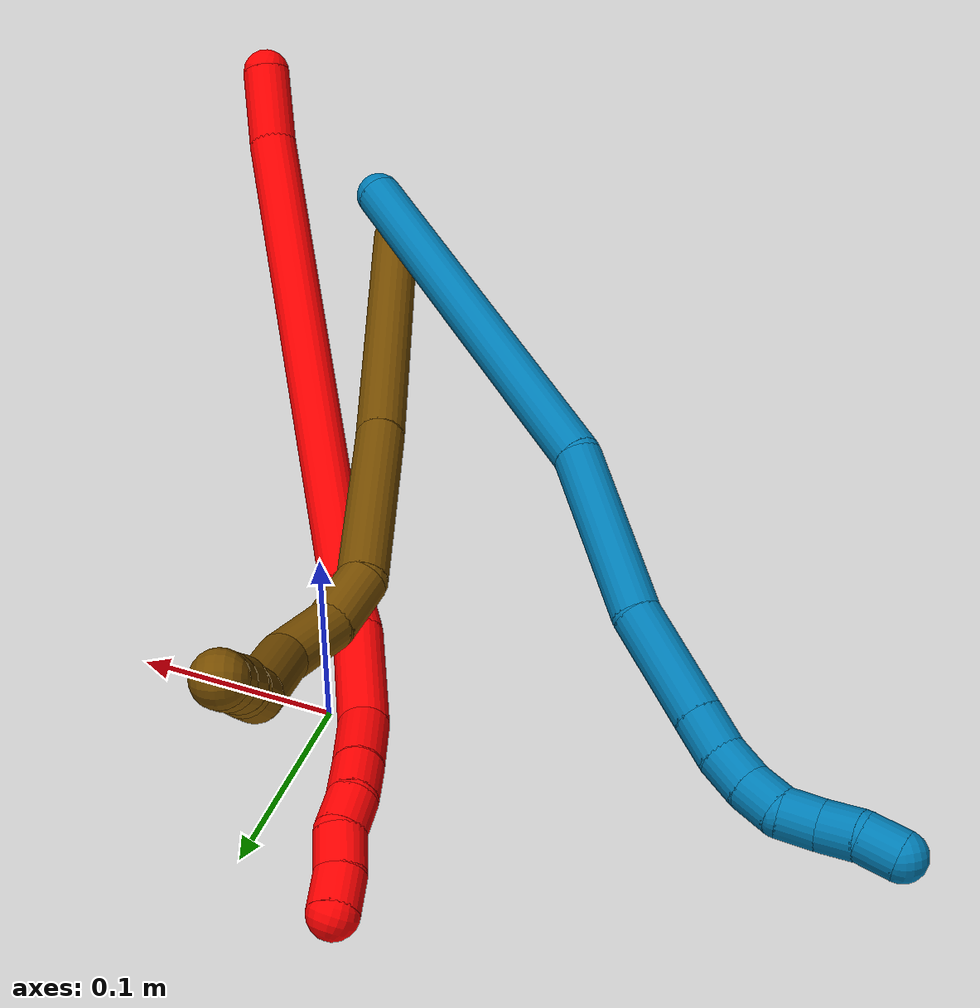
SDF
<sdf version="1.7">
 <world name="default">
  <model name="2">
   <static>0</static>
   <link name="2">
    <collision name="collision-cylinder-e_1_1_4">
     <pose>-0.007089 0.006173 -0.018913 -2.8261 -0.342307 1.65376</pose>
     <geometry><cylinder><radius>0.0125</radius><length>0.04224</length></cylinder></geometry>
     <surface>
      <friction><ode><mu>1.16</mu><mu2>1.16</mu2><slip1>0</slip1><slip2>0</slip2></ode></friction>
      <contact><ode><kp>1e+06</kp><kd>1</kd><max_vel>0</max_vel><min_depth>0.001</min_depth></ode></contact>
     </surface>
    </collision>
    <visual name="visual-cylinder-e_1_1_4">
     <pose>-0.007089 0.006173 -0.018913 -2.8261 -0.342307 1.65376</pose>
     <geometry><cylinder><radius>0.0125</radius><length>0.04224</length></cylinder></geometry>
     <material><ambient>1 0 0 1</ambient></material>
    </visual>
    <collision name="collision-cylinder-e_2_4_5">
     <pose>-0.0576 0.068244 -0.144201 -2.65777 -0.34674 1.23449</pose>
     <geometry><cylinder><radius>0.0125</radius><length>0.255546</length></cylinder></geometry>
     <surface>
      <friction><ode><mu>1.16</mu><mu2>1.16</mu2><slip1>0</slip1><slip2>0</slip2></ode></friction>
      <contact><ode><kp>1e+06</kp><kd>1</kd><max_vel>0</max_vel><min_depth>0.001</min_depth></ode></contact>
     </surface>
    </collision>
    <visual name="visual-cylinder-e_2_4_5">
     <pose>-0.0576 0.068244 -0.144201 -2.65777 -0.34674 1.23449</pose>
     <geometry><cylinder><radius>0.0125</radius><length>0.255546</length></cylinder></geometry>
     <material><ambient>1 0 0 1</ambient></material>
    </visual>
    <collision name="collision-cylinder-e_3_5_6">
     <pose>-0.106614 0.132302 -0.261652 -2.50658 -0.386172 1.07343</pose>
     <geometry><cylinder><radius>0.0125</radius><length>0.029699</length></cylinder></geometry>
     <surface>
      <friction><ode><mu>1.16</mu><mu2>1.16</mu2><slip1>0</slip1><slip2>0</slip2></ode></friction>
      <contact><ode><kp>1e+06</kp><kd>1</kd><max_vel>0</max_vel><min_depth>0.001</min_depth></ode></contact>
     </surface>
    </collision>
    <visual name="visual-cylinder-e_3_5_6">
     <pose>-0.106614 0.132302 -0.261652 -2.50658 -0.386172 1.07343</pose>
     <geometry><cylinder><radius>0.0125</radius><length>0.029699</length></cylinder></geometry>
     <material><ambient>1 0 0 1</ambient></material>
    </visual>
    <collision name="collision-cylinder-e_4_6_7">
     <pose>-0.115739 0.159676 -0.29289 -2.3803 -0.126153 0.313092</pose>
     <geometry><cylinder><radius>0.0125</radius><length>0.056151</length></cylinder></geometry>
     <surface>
      <friction><ode><mu>1.16</mu><mu2>1.16</mu2><slip1>0</slip1><slip2>0</slip2></ode></friction>
      <contact><ode><kp>1e+06</kp><kd>1</kd><max_vel>0</max_vel><min_depth>0.001</min_depth></ode></contact>
     </surface>
    </collision>
    <visual name="visual-cylinder-e_4_6_7">
     <pose>-0.115739 0.159676 -0.29289 -2.3803 -0.126153 0.313092</pose>
     <geometry><cylinder><radius>0.0125</radius><length>0.056151</length></cylinder></geometry>
     <material><ambient>1 0 0 1</ambient></material>
    </visual>
    <collision name="collision-cylinder-e_5_7_8">
     <pose>-0.117388 0.192709 -0.321934 -2.14197 0.114187 -0.208578</pose>
     <geometry><cylinder><radius>0.0125</radius><length>0.033068</length></cylinder></geometry>
     <surface>
      <friction><ode><mu>1.16</mu><mu2>1.16</mu2><slip1>0</slip1><slip2>0</slip2></ode></friction>
      <contact><ode><kp>1e+06</kp><kd>1</kd><max_vel>0</max_vel><min_depth>0.001</min_depth></ode></contact>
     </surface>
    </collision>
    <visual name="visual-cylinder-e_5_7_8">
     <pose>-0.117388 0.192709 -0.321934 -2.14197 0.114187 -0.208578</pose>
     <geometry><cylinder><radius>0.0125</radius><length>0.033068</length></cylinder></geometry>
     <material><ambient>1 0 0 1</ambient></material>
    </visual>
    <collision name="collision-cylinder-e_6_8_9">
     <pose>-0.114096 0.215446 -0.337612 -2.22212 0.124938 -0.251335</pose>
     <geometry><cylinder><radius>0.0125</radius><length>0.022603</length></cylinder></geometry>
     <surface>
      <friction><ode><mu>1.16</mu><mu2>1.16</mu2><slip1>0</slip1><slip2>0</slip2></ode></friction>
      <contact><ode><kp>1e+06</kp><kd>1</kd><max_vel>0</max_vel><min_depth>0.001</min_depth></ode></contact>
     </surface>
    </collision>
    <visual name="visual-cylinder-e_6_8_9">
     <pose>-0.114096 0.215446 -0.337612 -2.22212 0.124938 -0.251335</pose>
     <geometry><cylinder><radius>0.0125</radius><length>0.022603</length></cylinder></geometry>
     <material><ambient>1 0 0 1</ambient></material>
    </visual>
    <collision name="collision-cylinder-e_7_9_10">
     <pose>-0.110558 0.230867 -0.351745 -2.41628 0.213944 -0.551584</pose>
     <geometry><cylinder><radius>0.0125</radius><length>0.020063</length></cylinder></geometry>
     <surface>
      <friction><ode><mu>1.16</mu><mu2>1.16</mu2><slip1>0</slip1><slip2>0</slip2></ode></friction>
      <contact><ode><kp>1e+06</kp><kd>1</kd><max_vel>0</max_vel><min_depth>0.001</min_depth></ode></contact>
     </surface>
    </collision>
    <visual name="visual-cylinder-e_7_9_10">
     <pose>-0.110558 0.230867 -0.351745 -2.41628 0.213944 -0.551584</pose>
     <geometry><cylinder><radius>0.0125</radius><length>0.020063</length></cylinder></geometry>
     <material><ambient>1 0 0 1</ambient></material>
    </visual>
    <collision name="collision-cylinder-e_8_10_11">
     <pose>-0.109797 0.243626 -0.367164 -2.4829 -0.133177 0.385374</pose>
     <geometry><cylinder><radius>0.0125</radius><length>0.020625</length></cylinder></geometry>
     <surface>
      <friction><ode><mu>1.16</mu><mu2>1.16</mu2><slip1>0</slip1><slip2>0</slip2></ode></friction>
      <contact><ode><kp>1e+06</kp><kd>1</kd><max_vel>0</max_vel><min_depth>0.001</min_depth></ode></contact>
     </surface>
    </collision>
    <visual name="visual-cylinder-e_8_10_11">
     <pose>-0.109797 0.243626 -0.367164 -2.4829 -0.133177 0.385374</pose>
     <geometry><cylinder><radius>0.0125</radius><length>0.020625</length></cylinder></geometry>
     <material><ambient>1 0 0 1</ambient></material>
    </visual>
    <collision name="collision-cylinder-e_9_11_2">
     <pose>-0.110738 0.25566 -0.3834 -2.52505 0.042854 -0.134401</pose>
     <geometry><cylinder><radius>0.0125</radius><length>0.020006</length></cylinder></geometry>
     <surface>
      <friction><ode><mu>1.16</mu><mu2>1.16</mu2><slip1>0</slip1><slip2>0</slip2></ode></friction>
      <contact><ode><kp>1e+06</kp><kd>1</kd><max_vel>0</max_vel><min_depth>0.001</min_depth></ode></contact>
     </surface>
    </collision>
    <visual name="visual-cylinder-e_9_11_2">
     <pose>-0.110738 0.25566 -0.3834 -2.52505 0.042854 -0.134401</pose>
     <geometry><cylinder><radius>0.0125</radius><length>0.020006</length></cylinder></geometry>
     <material><ambient>1 0 0 1</ambient></material>
    </visual>
    <collision name="collision-sphere-2">
     <pose>-0.110309 0.261439 -0.391554 0 -0 0</pose>
     <geometry><sphere><radius>0.0125</radius></sphere></geometry>
     <surface>
      <friction><ode><mu>1.16</mu><mu2>1.16</mu2><slip1>0</slip1><slip2>0</slip2></ode></friction>
      <contact><ode><kp>1e+06</kp><kd>1</kd><max_vel>0</max_vel><min_depth>0.001</min_depth></ode></contact>
     </surface>
    </collision>
    <visual name="visual-sphere-2">
     <pose>-0.110309 0.261439 -0.391554 0 -0 0</pose>
     <geometry><sphere><radius>0.0125</radius></sphere></geometry>
     <material><ambient>1 0 0 1</ambient></material>
    </visual>
    <collision name="collision-sphere-11">
     <pose>-0.111167 0.249882 -0.375246 0 -0 0</pose>
     <geometry><sphere><radius>0.0125</radius></sphere></geometry>
     <surface>
      <friction><ode><mu>1.16</mu><mu2>1.16</mu2><slip1>0</slip1><slip2>0</slip2></ode></friction>
      <contact><ode><kp>1e+06</kp><kd>1</kd><max_vel>0</max_vel><min_depth>0.001</min_depth></ode></contact>
     </surface>
    </collision>
    <visual name="visual-sphere-11">
     <pose>-0.111167 0.249882 -0.375246 0 -0 0</pose>
     <geometry><sphere><radius>0.0125</radius></sphere></geometry>
     <material><ambient>1 0 0 1</ambient></material>
    </visual>
    <collision name="collision-sphere-10">
     <pose>-0.108428 0.237369 -0.359081 0 -0 0</pose>
     <geometry><sphere><radius>0.0125</radius></sphere></geometry>
     <surface>
      <friction><ode><mu>1.16</mu><mu2>1.16</mu2><slip1>0</slip1><slip2>0</slip2></ode></friction>
      <contact><ode><kp>1e+06</kp><kd>1</kd><max_vel>0</max_vel><min_depth>0.001</min_depth></ode></contact>
     </surface>
    </collision>
    <visual name="visual-sphere-10">
     <pose>-0.108428 0.237369 -0.359081 0 -0 0</pose>
     <geometry><sphere><radius>0.0125</radius></sphere></geometry>
     <material><ambient>1 0 0 1</ambient></material>
    </visual>
    <collision name="collision-sphere-9">
     <pose>-0.112688 0.224364 -0.34441 0 -0 0</pose>
     <geometry><sphere><radius>0.0125</radius></sphere></geometry>
     <surface>
      <friction><ode><mu>1.16</mu><mu2>1.16</mu2><slip1>0</slip1><slip2>0</slip2></ode></friction>
      <contact><ode><kp>1e+06</kp><kd>1</kd><max_vel>0</max_vel><min_depth>0.001</min_depth></ode></contact>
     </surface>
    </collision>
    <visual name="visual-sphere-9">
     <pose>-0.112688 0.224364 -0.34441 0 -0 0</pose>
     <geometry><sphere><radius>0.0125</radius></sphere></geometry>
     <material><ambient>1 0 0 1</ambient></material>
    </visual>
    <collision name="collision-sphere-4">
     <pose>-0.014178 0.012346 -0.037825 0 -0 0</pose>
     <geometry><sphere><radius>0.0125</radius></sphere></geometry>
     <surface>
      <friction><ode><mu>1.16</mu><mu2>1.16</mu2><slip1>0</slip1><slip2>0</slip2></ode></friction>
      <contact><ode><kp>1e+06</kp><kd>1</kd><max_vel>0</max_vel><min_depth>0.001</min_depth></ode></contact>
     </surface>
    </collision>
    <visual name="visual-sphere-4">
     <pose>-0.014178 0.012346 -0.037825 0 -0 0</pose>
     <geometry><sphere><radius>0.0125</radius></sphere></geometry>
     <material><ambient>1 0 0 1</ambient></material>
    </visual>
    <collision name="collision-sphere-1">
     <geometry><sphere><radius>0.0125</radius></sphere></geometry>
     <surface>
      <friction><ode><mu>1.16</mu><mu2>1.16</mu2><slip1>0</slip1><slip2>0</slip2></ode></friction>
      <contact><ode><kp>1e+06</kp><kd>1</kd><max_vel>0</max_vel><min_depth>0.001</min_depth></ode></contact>
     </surface>
    </collision>
    <visual name="visual-sphere-1">
     <geometry><sphere><radius>0.0125</radius></sphere></geometry>
     <material><ambient>1 0 0 1</ambient></material>
    </visual>
    <collision name="collision-sphere-8">
     <pose>-0.115504 0.206528 -0.330814 0 -0 0</pose>
     <geometry><sphere><radius>0.0125</radius></sphere></geometry>
     <surface>
      <friction><ode><mu>1.16</mu><mu2>1.16</mu2><slip1>0</slip1><slip2>0</slip2></ode></friction>
      <contact><ode><kp>1e+06</kp><kd>1</kd><max_vel>0</max_vel><min_depth>0.001</min_depth></ode></contact>
     </surface>
    </collision>
    <visual name="visual-sphere-8">
     <pose>-0.115504 0.206528 -0.330814 0 -0 0</pose>
     <geometry><sphere><radius>0.0125</radius></sphere></geometry>
     <material><ambient>1 0 0 1</ambient></material>
    </visual>
    <collision name="collision-sphere-5">
     <pose>-0.101021 0.124143 -0.250578 0 -0 0</pose>
     <geometry><sphere><radius>0.0125</radius></sphere></geometry>
     <surface>
      <friction><ode><mu>1.16</mu><mu2>1.16</mu2><slip1>0</slip1><slip2>0</slip2></ode></friction>
      <contact><ode><kp>1e+06</kp><kd>1</kd><max_vel>0</max_vel><min_depth>0.001</min_depth></ode></contact>
     </surface>
    </collision>
    <visual name="visual-sphere-5">
     <pose>-0.101021 0.124143 -0.250578 0 -0 0</pose>
     <geometry><sphere><radius>0.0125</radius></sphere></geometry>
     <material><ambient>1 0 0 1</ambient></material>
    </visual>
    <collision name="collision-sphere-6">
     <pose>-0.112207 0.140462 -0.272726 0 -0 0</pose>
     <geometry><sphere><radius>0.0125</radius></sphere></geometry>
     <surface>
      <friction><ode><mu>1.16</mu><mu2>1.16</mu2><slip1>0</slip1><slip2>0</slip2></ode></friction>
      <contact><ode><kp>1e+06</kp><kd>1</kd><max_vel>0</max_vel><min_depth>0.001</min_depth></ode></contact>
     </surface>
    </collision>
    <visual name="visual-sphere-6">
     <pose>-0.112207 0.140462 -0.272726 0 -0 0</pose>
     <geometry><sphere><radius>0.0125</radius></sphere></geometry>
     <material><ambient>1 0 0 1</ambient></material>
    </visual>
    <collision name="collision-sphere-7">
     <pose>-0.119272 0.17889 -0.313053 0 -0 0</pose>
     <geometry><sphere><radius>0.0125</radius></sphere></geometry>
     <surface>
      <friction><ode><mu>1.16</mu><mu2>1.16</mu2><slip1>0</slip1><slip2>0</slip2></ode></friction>
      <contact><ode><kp>1e+06</kp><kd>1</kd><max_vel>0</max_vel><min_depth>0.001</min_depth></ode></contact>
     </surface>
    </collision>
    <visual name="visual-sphere-7">
     <pose>-0.119272 0.17889 -0.313053 0 -0 0</pose>
     <geometry><sphere><radius>0.0125</radius></sphere></geometry>
     <material><ambient>1 0 0 1</ambient></material>
    </visual>
    <inertial>
     <pose>-0.075686 0.113218 -0.204885 0 -0 0</pose>
     <mass>0.5</mass>
     <inertia>
      <ixx>0.00171</ixx>
      <ixy>0</ixy>
      <ixz>0</ixz>
      <iyy>0.001061</iyy>
      <iyz>0</iyz>
      <izz>-0.000186</izz>
     </inertia>
    </inertial>
   </link>
   <pose>0.15529 -0.280542 0.174541 0.705572 -0.43548 0.384952</pose>
  </model>
  <model name="9">
   <static>0</static>
   <link name="9">
    <collision name="collision-cylinder-e_1_1_4">
     <pose>-0.100933 0.042528 -0.023253 -2.07115 -1.1231 1.62995</pose>
     <geometry><cylinder><radius>0.0125</radius><length>0.223936</length></cylinder></geometry>
     <surface>
      <friction><ode><mu>1.16</mu><mu2>1.16</mu2><slip1>0</slip1><slip2>0</slip2></ode></friction>
      <contact><ode><kp>1e+06</kp><kd>1</kd><max_vel>0</max_vel><min_depth>0.001</min_depth></ode></contact>
     </surface>
    </collision>
    <visual name="visual-cylinder-e_1_1_4">
     <pose>-0.100933 0.042528 -0.023253 -2.07115 -1.1231 1.62995</pose>
     <geometry><cylinder><radius>0.0125</radius><length>0.223936</length></cylinder></geometry>
     <material><ambient>0 0.490196 0.709804 1</ambient></material>
    </visual>
    <collision name="collision-cylinder-e_2_4_5">
     <pose>-0.239592 0.112136 -0.048483 -1.6437 -0.946968 1.00744</pose>
     <geometry><cylinder><radius>0.0125</radius><length>0.092962</length></cylinder></geometry>
     <surface>
      <friction><ode><mu>1.16</mu><mu2>1.16</mu2><slip1>0</slip1><slip2>0</slip2></ode></friction>
      <contact><ode><kp>1e+06</kp><kd>1</kd><max_vel>0</max_vel><min_depth>0.001</min_depth></ode></contact>
     </surface>
    </collision>
    <visual name="visual-cylinder-e_2_4_5">
     <pose>-0.239592 0.112136 -0.048483 -1.6437 -0.946968 1.00744</pose>
     <geometry><cylinder><radius>0.0125</radius><length>0.092962</length></cylinder></geometry>
     <material><ambient>0 0.490196 0.709804 1</ambient></material>
    </visual>
    <collision name="collision-cylinder-e_3_5_6">
     <pose>-0.300974 0.155821 -0.057303 -1.96162 -0.921414 1.27583</pose>
     <geometry><cylinder><radius>0.0125</radius><length>0.059401</length></cylinder></geometry>
     <surface>
      <friction><ode><mu>1.16</mu><mu2>1.16</mu2><slip1>0</slip1><slip2>0</slip2></ode></friction>
      <contact><ode><kp>1e+06</kp><kd>1</kd><max_vel>0</max_vel><min_depth>0.001</min_depth></ode></contact>
     </surface>
    </collision>
    <visual name="visual-cylinder-e_3_5_6">
     <pose>-0.300974 0.155821 -0.057303 -1.96162 -0.921414 1.27583</pose>
     <geometry><cylinder><radius>0.0125</radius><length>0.059401</length></cylinder></geometry>
     <material><ambient>0 0.490196 0.709804 1</ambient></material>
    </visual>
    <collision name="collision-cylinder-e_4_6_7">
     <pose>-0.333658 0.178741 -0.066735 -1.96003 -0.923558 1.27676</pose>
     <geometry><cylinder><radius>0.0125</radius><length>0.022638</length></cylinder></geometry>
     <surface>
      <friction><ode><mu>1.16</mu><mu2>1.16</mu2><slip1>0</slip1><slip2>0</slip2></ode></friction>
      <contact><ode><kp>1e+06</kp><kd>1</kd><max_vel>0</max_vel><min_depth>0.001</min_depth></ode></contact>
     </surface>
    </collision>
    <visual name="visual-cylinder-e_4_6_7">
     <pose>-0.333658 0.178741 -0.066735 -1.96003 -0.923558 1.27676</pose>
     <geometry><cylinder><radius>0.0125</radius><length>0.022638</length></cylinder></geometry>
     <material><ambient>0 0.490196 0.709804 1</ambient></material>
    </visual>
    <collision name="collision-cylinder-e_5_7_8">
     <pose>-0.351566 0.189306 -0.072672 -2.2379 -1.02351 1.71635</pose>
     <geometry><cylinder><radius>0.0125</radius><length>0.020793</length></cylinder></geometry>
     <surface>
      <friction><ode><mu>1.16</mu><mu2>1.16</mu2><slip1>0</slip1><slip2>0</slip2></ode></friction>
      <contact><ode><kp>1e+06</kp><kd>1</kd><max_vel>0</max_vel><min_depth>0.001</min_depth></ode></contact>
     </surface>
    </collision>
    <visual name="visual-cylinder-e_5_7_8">
     <pose>-0.351566 0.189306 -0.072672 -2.2379 -1.02351 1.71635</pose>
     <geometry><cylinder><radius>0.0125</radius><length>0.020793</length></cylinder></geometry>
     <material><ambient>0 0.490196 0.709804 1</ambient></material>
    </visual>
    <collision name="collision-cylinder-e_6_8_9">
     <pose>-0.369447 0.195947 -0.079987 -2.5994 -1.09559 2.28662</pose>
     <geometry><cylinder><radius>0.0125</radius><length>0.020251</length></cylinder></geometry>
     <surface>
      <friction><ode><mu>1.16</mu><mu2>1.16</mu2><slip1>0</slip1><slip2>0</slip2></ode></friction>
      <contact><ode><kp>1e+06</kp><kd>1</kd><max_vel>0</max_vel><min_depth>0.001</min_depth></ode></contact>
     </surface>
    </collision>
    <visual name="visual-cylinder-e_6_8_9">
     <pose>-0.369447 0.195947 -0.079987 -2.5994 -1.09559 2.28662</pose>
     <geometry><cylinder><radius>0.0125</radius><length>0.020251</length></cylinder></geometry>
     <material><ambient>0 0.490196 0.709804 1</ambient></material>
    </visual>
    <collision name="collision-cylinder-e_7_9_10">
     <pose>-0.384695 0.199814 -0.091633 -2.95156 -0.673925 2.61037</pose>
     <geometry><cylinder><radius>0.0125</radius><length>0.020012</length></cylinder></geometry>
     <surface>
      <friction><ode><mu>1.16</mu><mu2>1.16</mu2><slip1>0</slip1><slip2>0</slip2></ode></friction>
      <contact><ode><kp>1e+06</kp><kd>1</kd><max_vel>0</max_vel><min_depth>0.001</min_depth></ode></contact>
     </surface>
    </collision>
    <visual name="visual-cylinder-e_7_9_10">
     <pose>-0.384695 0.199814 -0.091633 -2.95156 -0.673925 2.61037</pose>
     <geometry><cylinder><radius>0.0125</radius><length>0.020012</length></cylinder></geometry>
     <material><ambient>0 0.490196 0.709804 1</ambient></material>
    </visual>
    <collision name="collision-cylinder-e_8_10_11">
     <pose>-0.39867 0.200818 -0.105637 3.06702 -0.883623 -2.98419</pose>
     <geometry><cylinder><radius>0.0125</radius><length>0.020002</length></cylinder></geometry>
     <surface>
      <friction><ode><mu>1.16</mu><mu2>1.16</mu2><slip1>0</slip1><slip2>0</slip2></ode></friction>
      <contact><ode><kp>1e+06</kp><kd>1</kd><max_vel>0</max_vel><min_depth>0.001</min_depth></ode></contact>
     </surface>
    </collision>
    <visual name="visual-cylinder-e_8_10_11">
     <pose>-0.39867 0.200818 -0.105637 3.06702 -0.883623 -2.98419</pose>
     <geometry><cylinder><radius>0.0125</radius><length>0.020002</length></cylinder></geometry>
     <material><ambient>0 0.490196 0.709804 1</ambient></material>
    </visual>
    <collision name="collision-cylinder-e_9_11_2">
     <pose>-0.413491 0.202748 -0.118599 -2.79411 -0.78778 2.34243</pose>
     <geometry><cylinder><radius>0.0125</radius><length>0.020007</length></cylinder></geometry>
     <surface>
      <friction><ode><mu>1.16</mu><mu2>1.16</mu2><slip1>0</slip1><slip2>0</slip2></ode></friction>
      <contact><ode><kp>1e+06</kp><kd>1</kd><max_vel>0</max_vel><min_depth>0.001</min_depth></ode></contact>
     </surface>
    </collision>
    <visual name="visual-cylinder-e_9_11_2">
     <pose>-0.413491 0.202748 -0.118599 -2.79411 -0.78778 2.34243</pose>
     <geometry><cylinder><radius>0.0125</radius><length>0.020007</length></cylinder></geometry>
     <material><ambient>0 0.490196 0.709804 1</ambient></material>
    </visual>
    <collision name="collision-sphere-2">
     <pose>-0.420582 0.205151 -0.125234 0 -0 0</pose>
     <geometry><sphere><radius>0.0125</radius></sphere></geometry>
     <surface>
      <friction><ode><mu>1.16</mu><mu2>1.16</mu2><slip1>0</slip1><slip2>0</slip2></ode></friction>
      <contact><ode><kp>1e+06</kp><kd>1</kd><max_vel>0</max_vel><min_depth>0.001</min_depth></ode></contact>
     </surface>
    </collision>
    <visual name="visual-sphere-2">
     <pose>-0.420582 0.205151 -0.125234 0 -0 0</pose>
     <geometry><sphere><radius>0.0125</radius></sphere></geometry>
     <material><ambient>0 0.490196 0.709804 1</ambient></material>
    </visual>
    <collision name="collision-sphere-11">
     <pose>-0.406401 0.200345 -0.111964 0 -0 0</pose>
     <geometry><sphere><radius>0.0125</radius></sphere></geometry>
     <surface>
      <friction><ode><mu>1.16</mu><mu2>1.16</mu2><slip1>0</slip1><slip2>0</slip2></ode></friction>
      <contact><ode><kp>1e+06</kp><kd>1</kd><max_vel>0</max_vel><min_depth>0.001</min_depth></ode></contact>
     </surface>
    </collision>
    <visual name="visual-sphere-11">
     <pose>-0.406401 0.200345 -0.111964 0 -0 0</pose>
     <geometry><sphere><radius>0.0125</radius></sphere></geometry>
     <material><ambient>0 0.490196 0.709804 1</ambient></material>
    </visual>
    <collision name="collision-sphere-10">
     <pose>-0.390939 0.201291 -0.099311 0 -0 0</pose>
     <geometry><sphere><radius>0.0125</radius></sphere></geometry>
     <surface>
      <friction><ode><mu>1.16</mu><mu2>1.16</mu2><slip1>0</slip1><slip2>0</slip2></ode></friction>
      <contact><ode><kp>1e+06</kp><kd>1</kd><max_vel>0</max_vel><min_depth>0.001</min_depth></ode></contact>
     </surface>
    </collision>
    <visual name="visual-sphere-10">
     <pose>-0.390939 0.201291 -0.099311 0 -0 0</pose>
     <geometry><sphere><radius>0.0125</radius></sphere></geometry>
     <material><ambient>0 0.490196 0.709804 1</ambient></material>
    </visual>
    <collision name="collision-sphere-9">
     <pose>-0.37845 0.198337 -0.083956 0 -0 0</pose>
     <geometry><sphere><radius>0.0125</radius></sphere></geometry>
     <surface>
      <friction><ode><mu>1.16</mu><mu2>1.16</mu2><slip1>0</slip1><slip2>0</slip2></ode></friction>
      <contact><ode><kp>1e+06</kp><kd>1</kd><max_vel>0</max_vel><min_depth>0.001</min_depth></ode></contact>
     </surface>
    </collision>
    <visual name="visual-sphere-9">
     <pose>-0.37845 0.198337 -0.083956 0 -0 0</pose>
     <geometry><sphere><radius>0.0125</radius></sphere></geometry>
     <material><ambient>0 0.490196 0.709804 1</ambient></material>
    </visual>
    <collision name="collision-sphere-4">
     <pose>-0.201866 0.085056 -0.046506 0 -0 0</pose>
     <geometry><sphere><radius>0.0125</radius></sphere></geometry>
     <surface>
      <friction><ode><mu>1.16</mu><mu2>1.16</mu2><slip1>0</slip1><slip2>0</slip2></ode></friction>
      <contact><ode><kp>1e+06</kp><kd>1</kd><max_vel>0</max_vel><min_depth>0.001</min_depth></ode></contact>
     </surface>
    </collision>
    <visual name="visual-sphere-4">
     <pose>-0.201866 0.085056 -0.046506 0 -0 0</pose>
     <geometry><sphere><radius>0.0125</radius></sphere></geometry>
     <material><ambient>0 0.490196 0.709804 1</ambient></material>
    </visual>
    <collision name="collision-sphere-1">
     <geometry><sphere><radius>0.0125</radius></sphere></geometry>
     <surface>
      <friction><ode><mu>1.16</mu><mu2>1.16</mu2><slip1>0</slip1><slip2>0</slip2></ode></friction>
      <contact><ode><kp>1e+06</kp><kd>1</kd><max_vel>0</max_vel><min_depth>0.001</min_depth></ode></contact>
     </surface>
    </collision>
    <visual name="visual-sphere-1">
     <geometry><sphere><radius>0.0125</radius></sphere></geometry>
     <material><ambient>0 0.490196 0.709804 1</ambient></material>
    </visual>
    <collision name="collision-sphere-8">
     <pose>-0.360444 0.193556 -0.076019 0 -0 0</pose>
     <geometry><sphere><radius>0.0125</radius></sphere></geometry>
     <surface>
      <friction><ode><mu>1.16</mu><mu2>1.16</mu2><slip1>0</slip1><slip2>0</slip2></ode></friction>
      <contact><ode><kp>1e+06</kp><kd>1</kd><max_vel>0</max_vel><min_depth>0.001</min_depth></ode></contact>
     </surface>
    </collision>
    <visual name="visual-sphere-8">
     <pose>-0.360444 0.193556 -0.076019 0 -0 0</pose>
     <geometry><sphere><radius>0.0125</radius></sphere></geometry>
     <material><ambient>0 0.490196 0.709804 1</ambient></material>
    </visual>
    <collision name="collision-sphere-5">
     <pose>-0.277318 0.139216 -0.050461 0 -0 0</pose>
     <geometry><sphere><radius>0.0125</radius></sphere></geometry>
     <surface>
      <friction><ode><mu>1.16</mu><mu2>1.16</mu2><slip1>0</slip1><slip2>0</slip2></ode></friction>
      <contact><ode><kp>1e+06</kp><kd>1</kd><max_vel>0</max_vel><min_depth>0.001</min_depth></ode></contact>
     </surface>
    </collision>
    <visual name="visual-sphere-5">
     <pose>-0.277318 0.139216 -0.050461 0 -0 0</pose>
     <geometry><sphere><radius>0.0125</radius></sphere></geometry>
     <material><ambient>0 0.490196 0.709804 1</ambient></material>
    </visual>
    <collision name="collision-sphere-6">
     <pose>-0.324629 0.172426 -0.064145 0 -0 0</pose>
     <geometry><sphere><radius>0.0125</radius></sphere></geometry>
     <surface>
      <friction><ode><mu>1.16</mu><mu2>1.16</mu2><slip1>0</slip1><slip2>0</slip2></ode></friction>
      <contact><ode><kp>1e+06</kp><kd>1</kd><max_vel>0</max_vel><min_depth>0.001</min_depth></ode></contact>
     </surface>
    </collision>
    <visual name="visual-sphere-6">
     <pose>-0.324629 0.172426 -0.064145 0 -0 0</pose>
     <geometry><sphere><radius>0.0125</radius></sphere></geometry>
     <material><ambient>0 0.490196 0.709804 1</ambient></material>
    </visual>
    <collision name="collision-sphere-7">
     <pose>-0.342688 0.185056 -0.069325 0 -0 0</pose>
     <geometry><sphere><radius>0.0125</radius></sphere></geometry>
     <surface>
      <friction><ode><mu>1.16</mu><mu2>1.16</mu2><slip1>0</slip1><slip2>0</slip2></ode></friction>
      <contact><ode><kp>1e+06</kp><kd>1</kd><max_vel>0</max_vel><min_depth>0.001</min_depth></ode></contact>
     </surface>
    </collision>
    <visual name="visual-sphere-7">
     <pose>-0.342688 0.185056 -0.069325 0 -0 0</pose>
     <geometry><sphere><radius>0.0125</radius></sphere></geometry>
     <material><ambient>0 0.490196 0.709804 1</ambient></material>
    </visual>
    <inertial>
     <pose>-0.218087 0.106452 -0.048158 0 -0 0</pose>
     <mass>0.5</mass>
     <inertia>
      <ixx>0.000424</ixx>
      <ixy>0</ixy>
      <ixz>0</ixz>
      <iyy>0.001312</iyy>
      <iyz>0</iyz>
      <izz>0.000508</izz>
     </inertia>
    </inertial>
   </link>
   <pose>0.093133 -0.287269 0.105175 -1.48311 0.280793 -0.878622</pose>
  </model>
  <model name="12">
   <static>0</static>
   <link name="12">
    <collision name="collision-cylinder-e_1_1_4">
     <pose>-0.005923 0.090028 0.002257 -1.54573 -0.065673 0.064048</pose>
     <geometry><cylinder><radius>0.0125</radius><length>0.180502</length></cylinder></geometry>
     <surface>
      <friction><ode><mu>1.16</mu><mu2>1.16</mu2><slip1>0</slip1><slip2>0</slip2></ode></friction>
      <contact><ode><kp>1e+06</kp><kd>1</kd><max_vel>0</max_vel><min_depth>0.001</min_depth></ode></contact>
     </surface>
    </collision>
    <visual name="visual-cylinder-e_1_1_4">
     <pose>-0.005923 0.090028 0.002257 -1.54573 -0.065673 0.064048</pose>
     <geometry><cylinder><radius>0.0125</radius><length>0.180502</length></cylinder></geometry>
     <material><ambient>0.466667 0.301961 0 1</ambient></material>
    </visual>
    <collision name="collision-cylinder-e_2_4_5">
     <pose>-0.016084 0.233211 0.004173 -1.57723 -0.07957 0.080083</pose>
     <geometry><cylinder><radius>0.0125</radius><length>0.106648</length></cylinder></geometry>
     <surface>
      <friction><ode><mu>1.16</mu><mu2>1.16</mu2><slip1>0</slip1><slip2>0</slip2></ode></friction>
      <contact><ode><kp>1e+06</kp><kd>1</kd><max_vel>0</max_vel><min_depth>0.001</min_depth></ode></contact>
     </surface>
    </collision>
    <visual name="visual-cylinder-e_2_4_5">
     <pose>-0.016084 0.233211 0.004173 -1.57723 -0.07957 0.080083</pose>
     <geometry><cylinder><radius>0.0125</radius><length>0.106648</length></cylinder></geometry>
     <material><ambient>0.466667 0.301961 0 1</ambient></material>
    </visual>
    <collision name="collision-cylinder-e_3_5_6">
     <pose>-0.021641 0.300931 -0.002534 -1.9828 -0.082724 0.126335</pose>
     <geometry><cylinder><radius>0.0125</radius><length>0.031902</length></cylinder></geometry>
     <surface>
      <friction><ode><mu>1.16</mu><mu2>1.16</mu2><slip1>0</slip1><slip2>0</slip2></ode></friction>
      <contact><ode><kp>1e+06</kp><kd>1</kd><max_vel>0</max_vel><min_depth>0.001</min_depth></ode></contact>
     </surface>
    </collision>
    <visual name="visual-cylinder-e_3_5_6">
     <pose>-0.021641 0.300931 -0.002534 -1.9828 -0.082724 0.126335</pose>
     <geometry><cylinder><radius>0.0125</radius><length>0.031902</length></cylinder></geometry>
     <material><ambient>0.466667 0.301961 0 1</ambient></material>
    </visual>
    <collision name="collision-cylinder-e_4_6_7">
     <pose>-0.019555 0.331125 -0.017839 -2.09036 0.186872 -0.32034</pose>
     <geometry><cylinder><radius>0.0125</radius><length>0.036644</length></cylinder></geometry>
     <surface>
      <friction><ode><mu>1.16</mu><mu2>1.16</mu2><slip1>0</slip1><slip2>0</slip2></ode></friction>
      <contact><ode><kp>1e+06</kp><kd>1</kd><max_vel>0</max_vel><min_depth>0.001</min_depth></ode></contact>
     </surface>
    </collision>
    <visual name="visual-cylinder-e_4_6_7">
     <pose>-0.019555 0.331125 -0.017839 -2.09036 0.186872 -0.32034</pose>
     <geometry><cylinder><radius>0.0125</radius><length>0.036644</length></cylinder></geometry>
     <material><ambient>0.466667 0.301961 0 1</ambient></material>
    </visual>
    <collision name="collision-cylinder-e_5_7_8">
     <pose>-0.0057 0.370916 -0.028582 -1.64537 0.407191 -0.437782</pose>
     <geometry><cylinder><radius>0.0125</radius><length>0.052778</length></cylinder></geometry>
     <surface>
      <friction><ode><mu>1.16</mu><mu2>1.16</mu2><slip1>0</slip1><slip2>0</slip2></ode></friction>
      <contact><ode><kp>1e+06</kp><kd>1</kd><max_vel>0</max_vel><min_depth>0.001</min_depth></ode></contact>
     </surface>
    </collision>
    <visual name="visual-cylinder-e_5_7_8">
     <pose>-0.0057 0.370916 -0.028582 -1.64537 0.407191 -0.437782</pose>
     <geometry><cylinder><radius>0.0125</radius><length>0.052778</length></cylinder></geometry>
     <material><ambient>0.466667 0.301961 0 1</ambient></material>
    </visual>
    <collision name="collision-cylinder-e_6_8_9">
     <pose>0.013397 0.403 -0.031093 -1.65968 0.827198 -0.894666</pose>
     <geometry><cylinder><radius>0.0125</radius><length>0.023492</length></cylinder></geometry>
     <surface>
      <friction><ode><mu>1.16</mu><mu2>1.16</mu2><slip1>0</slip1><slip2>0</slip2></ode></friction>
      <contact><ode><kp>1e+06</kp><kd>1</kd><max_vel>0</max_vel><min_depth>0.001</min_depth></ode></contact>
     </surface>
    </collision>
    <visual name="visual-cylinder-e_6_8_9">
     <pose>0.013397 0.403 -0.031093 -1.65968 0.827198 -0.894666</pose>
     <geometry><cylinder><radius>0.0125</radius><length>0.023492</length></cylinder></geometry>
     <material><ambient>0.466667 0.301961 0 1</ambient></material>
    </visual>
    <collision name="collision-cylinder-e_7_9_10">
     <pose>0.031421 0.420217 -0.030098 -1.38986 0.781564 -0.661643</pose>
     <geometry><cylinder><radius>0.0125</radius><length>0.026631</length></cylinder></geometry>
     <surface>
      <friction><ode><mu>1.16</mu><mu2>1.16</mu2><slip1>0</slip1><slip2>0</slip2></ode></friction>
      <contact><ode><kp>1e+06</kp><kd>1</kd><max_vel>0</max_vel><min_depth>0.001</min_depth></ode></contact>
     </surface>
    </collision>
    <visual name="visual-cylinder-e_7_9_10">
     <pose>0.031421 0.420217 -0.030098 -1.38986 0.781564 -0.661643</pose>
     <geometry><cylinder><radius>0.0125</radius><length>0.026631</length></cylinder></geometry>
     <material><ambient>0.466667 0.301961 0 1</ambient></material>
    </visual>
    <collision name="collision-cylinder-e_8_10_11">
     <pose>0.047898 0.436887 -0.028908 -1.63996 0.765214 -0.814357</pose>
     <geometry><cylinder><radius>0.0125</radius><length>0.020493</length></cylinder></geometry>
     <surface>
      <friction><ode><mu>1.16</mu><mu2>1.16</mu2><slip1>0</slip1><slip2>0</slip2></ode></friction>
      <contact><ode><kp>1e+06</kp><kd>1</kd><max_vel>0</max_vel><min_depth>0.001</min_depth></ode></contact>
     </surface>
    </collision>
    <visual name="visual-cylinder-e_8_10_11">
     <pose>0.047898 0.436887 -0.028908 -1.63996 0.765214 -0.814357</pose>
     <geometry><cylinder><radius>0.0125</radius><length>0.020493</length></cylinder></geometry>
     <material><ambient>0.466667 0.301961 0 1</ambient></material>
    </visual>
    <collision name="collision-cylinder-e_9_11_2">
     <pose>0.062269 0.451761 -0.029064 -1.52354 0.769353 -0.737024</pose>
     <geometry><cylinder><radius>0.0125</radius><length>0.02091</length></cylinder></geometry>
     <surface>
      <friction><ode><mu>1.16</mu><mu2>1.16</mu2><slip1>0</slip1><slip2>0</slip2></ode></friction>
      <contact><ode><kp>1e+06</kp><kd>1</kd><max_vel>0</max_vel><min_depth>0.001</min_depth></ode></contact>
     </surface>
    </collision>
    <visual name="visual-cylinder-e_9_11_2">
     <pose>0.062269 0.451761 -0.029064 -1.52354 0.769353 -0.737024</pose>
     <geometry><cylinder><radius>0.0125</radius><length>0.02091</length></cylinder></geometry>
     <material><ambient>0.466667 0.301961 0 1</ambient></material>
    </visual>
    <collision name="collision-sphere-2">
     <pose>0.069542 0.459263 -0.028709 0 -0 0</pose>
     <geometry><sphere><radius>0.0125</radius></sphere></geometry>
     <surface>
      <friction><ode><mu>1.16</mu><mu2>1.16</mu2><slip1>0</slip1><slip2>0</slip2></ode></friction>
      <contact><ode><kp>1e+06</kp><kd>1</kd><max_vel>0</max_vel><min_depth>0.001</min_depth></ode></contact>
     </surface>
    </collision>
    <visual name="visual-sphere-2">
     <pose>0.069542 0.459263 -0.028709 0 -0 0</pose>
     <geometry><sphere><radius>0.0125</radius></sphere></geometry>
     <material><ambient>0.466667 0.301961 0 1</ambient></material>
    </visual>
    <collision name="collision-sphere-11">
     <pose>0.054996 0.444259 -0.029419 0 -0 0</pose>
     <geometry><sphere><radius>0.0125</radius></sphere></geometry>
     <surface>
      <friction><ode><mu>1.16</mu><mu2>1.16</mu2><slip1>0</slip1><slip2>0</slip2></ode></friction>
      <contact><ode><kp>1e+06</kp><kd>1</kd><max_vel>0</max_vel><min_depth>0.001</min_depth></ode></contact>
     </surface>
    </collision>
    <visual name="visual-sphere-11">
     <pose>0.054996 0.444259 -0.029419 0 -0 0</pose>
     <geometry><sphere><radius>0.0125</radius></sphere></geometry>
     <material><ambient>0.466667 0.301961 0 1</ambient></material>
    </visual>
    <collision name="collision-sphere-10">
     <pose>0.040801 0.429514 -0.028397 0 -0 0</pose>
     <geometry><sphere><radius>0.0125</radius></sphere></geometry>
     <surface>
      <friction><ode><mu>1.16</mu><mu2>1.16</mu2><slip1>0</slip1><slip2>0</slip2></ode></friction>
      <contact><ode><kp>1e+06</kp><kd>1</kd><max_vel>0</max_vel><min_depth>0.001</min_depth></ode></contact>
     </surface>
    </collision>
    <visual name="visual-sphere-10">
     <pose>0.040801 0.429514 -0.028397 0 -0 0</pose>
     <geometry><sphere><radius>0.0125</radius></sphere></geometry>
     <material><ambient>0.466667 0.301961 0 1</ambient></material>
    </visual>
    <collision name="collision-sphere-9">
     <pose>0.022042 0.41092 -0.031799 0 -0 0</pose>
     <geometry><sphere><radius>0.0125</radius></sphere></geometry>
     <surface>
      <friction><ode><mu>1.16</mu><mu2>1.16</mu2><slip1>0</slip1><slip2>0</slip2></ode></friction>
      <contact><ode><kp>1e+06</kp><kd>1</kd><max_vel>0</max_vel><min_depth>0.001</min_depth></ode></contact>
     </surface>
    </collision>
    <visual name="visual-sphere-9">
     <pose>0.022042 0.41092 -0.031799 0 -0 0</pose>
     <geometry><sphere><radius>0.0125</radius></sphere></geometry>
     <material><ambient>0.466667 0.301961 0 1</ambient></material>
    </visual>
    <collision name="collision-sphere-4">
     <pose>-0.011846 0.180057 0.004515 0 -0 0</pose>
     <geometry><sphere><radius>0.0125</radius></sphere></geometry>
     <surface>
      <friction><ode><mu>1.16</mu><mu2>1.16</mu2><slip1>0</slip1><slip2>0</slip2></ode></friction>
      <contact><ode><kp>1e+06</kp><kd>1</kd><max_vel>0</max_vel><min_depth>0.001</min_depth></ode></contact>
     </surface>
    </collision>
    <visual name="visual-sphere-4">
     <pose>-0.011846 0.180057 0.004515 0 -0 0</pose>
     <geometry><sphere><radius>0.0125</radius></sphere></geometry>
     <material><ambient>0.466667 0.301961 0 1</ambient></material>
    </visual>
    <collision name="collision-sphere-1">
     <geometry><sphere><radius>0.0125</radius></sphere></geometry>
     <surface>
      <friction><ode><mu>1.16</mu><mu2>1.16</mu2><slip1>0</slip1><slip2>0</slip2></ode></friction>
      <contact><ode><kp>1e+06</kp><kd>1</kd><max_vel>0</max_vel><min_depth>0.001</min_depth></ode></contact>
     </surface>
    </collision>
    <visual name="visual-sphere-1">
     <geometry><sphere><radius>0.0125</radius></sphere></geometry>
     <material><ambient>0.466667 0.301961 0 1</ambient></material>
    </visual>
    <collision name="collision-sphere-8">
     <pose>0.004751 0.39508 -0.030387 0 -0 0</pose>
     <geometry><sphere><radius>0.0125</radius></sphere></geometry>
     <surface>
      <friction><ode><mu>1.16</mu><mu2>1.16</mu2><slip1>0</slip1><slip2>0</slip2></ode></friction>
      <contact><ode><kp>1e+06</kp><kd>1</kd><max_vel>0</max_vel><min_depth>0.001</min_depth></ode></contact>
     </surface>
    </collision>
    <visual name="visual-sphere-8">
     <pose>0.004751 0.39508 -0.030387 0 -0 0</pose>
     <geometry><sphere><radius>0.0125</radius></sphere></geometry>
     <material><ambient>0.466667 0.301961 0 1</ambient></material>
    </visual>
    <collision name="collision-sphere-5">
     <pose>-0.020323 0.286365 0.003831 0 -0 0</pose>
     <geometry><sphere><radius>0.0125</radius></sphere></geometry>
     <surface>
      <friction><ode><mu>1.16</mu><mu2>1.16</mu2><slip1>0</slip1><slip2>0</slip2></ode></friction>
      <contact><ode><kp>1e+06</kp><kd>1</kd><max_vel>0</max_vel><min_depth>0.001</min_depth></ode></contact>
     </surface>
    </collision>
    <visual name="visual-sphere-5">
     <pose>-0.020323 0.286365 0.003831 0 -0 0</pose>
     <geometry><sphere><radius>0.0125</radius></sphere></geometry>
     <material><ambient>0.466667 0.301961 0 1</ambient></material>
    </visual>
    <collision name="collision-sphere-6">
     <pose>-0.022959 0.315497 -0.0089 0 -0 0</pose>
     <geometry><sphere><radius>0.0125</radius></sphere></geometry>
     <surface>
      <friction><ode><mu>1.16</mu><mu2>1.16</mu2><slip1>0</slip1><slip2>0</slip2></ode></friction>
      <contact><ode><kp>1e+06</kp><kd>1</kd><max_vel>0</max_vel><min_depth>0.001</min_depth></ode></contact>
     </surface>
    </collision>
    <visual name="visual-sphere-6">
     <pose>-0.022959 0.315497 -0.0089 0 -0 0</pose>
     <geometry><sphere><radius>0.0125</radius></sphere></geometry>
     <material><ambient>0.466667 0.301961 0 1</ambient></material>
    </visual>
    <collision name="collision-sphere-7">
     <pose>-0.016151 0.346752 -0.026777 0 -0 0</pose>
     <geometry><sphere><radius>0.0125</radius></sphere></geometry>
     <surface>
      <friction><ode><mu>1.16</mu><mu2>1.16</mu2><slip1>0</slip1><slip2>0</slip2></ode></friction>
      <contact><ode><kp>1e+06</kp><kd>1</kd><max_vel>0</max_vel><min_depth>0.001</min_depth></ode></contact>
     </surface>
    </collision>
    <visual name="visual-sphere-7">
     <pose>-0.016151 0.346752 -0.026777 0 -0 0</pose>
     <geometry><sphere><radius>0.0125</radius></sphere></geometry>
     <material><ambient>0.466667 0.301961 0 1</ambient></material>
    </visual>
    <inertial>
     <pose>-0.002114 0.242979 -0.008245 0 -0 0</pose>
     <mass>0.5</mass>
     <inertia>
      <ixx>0.00066</ixx>
      <ixy>0</ixy>
      <ixz>0</ixz>
      <iyy>8.2e-05</iyy>
      <iyz>0</iyz>
      <izz>-0.000601</izz>
     </inertia>
    </inertial>
   </link>
   <pose>0.084296 -0.288514 0.077943 0.765834 -1.47695 -0.43761</pose>
  </model>
 </world>
</sdf>
